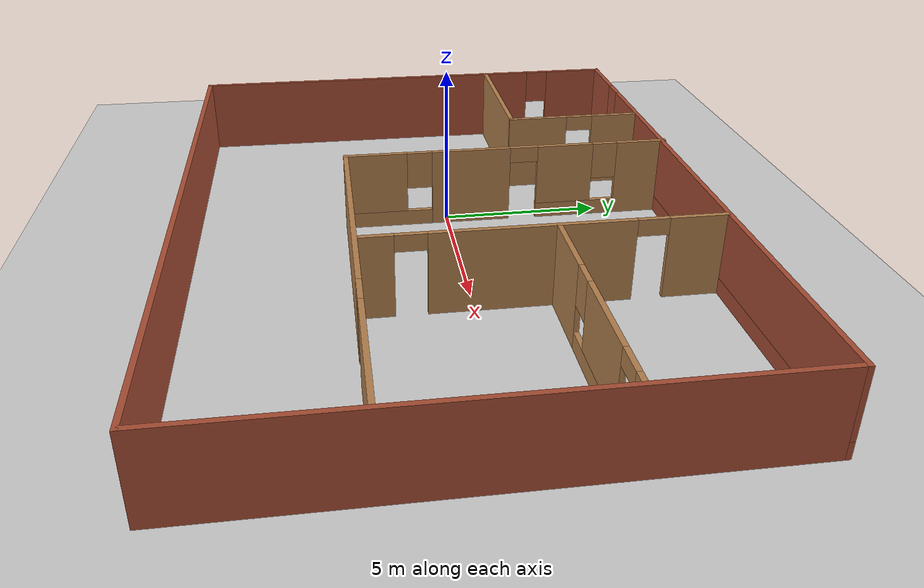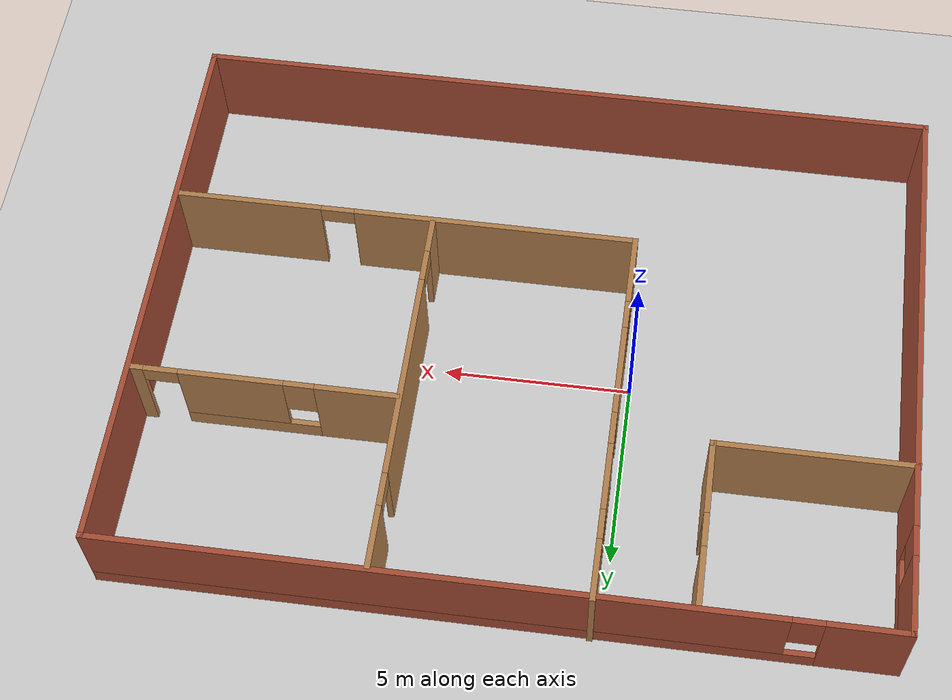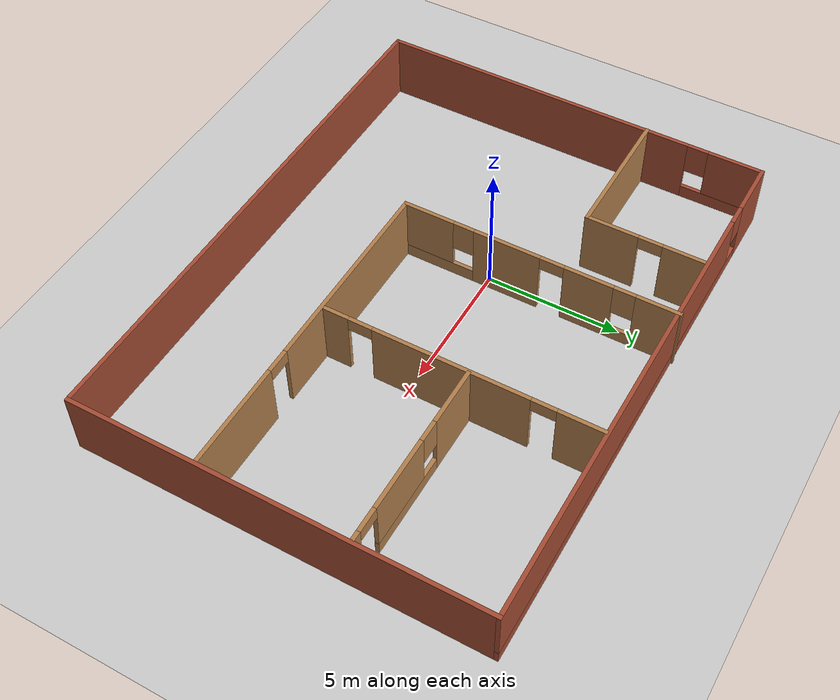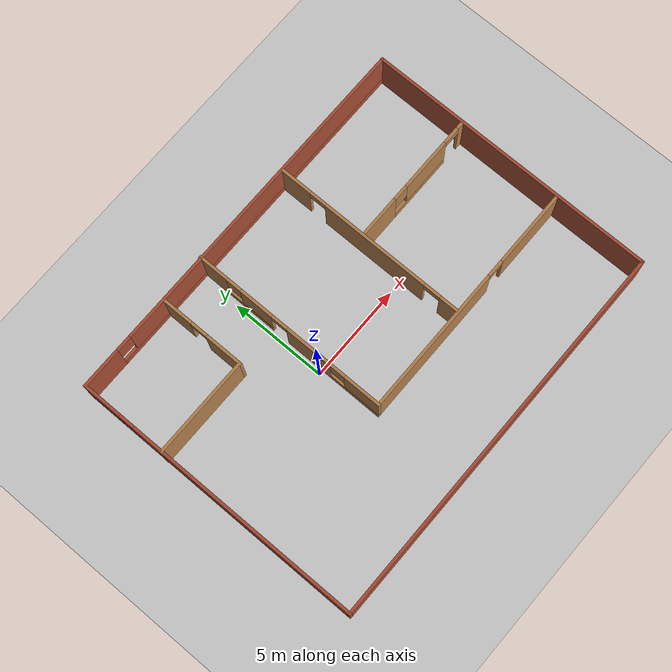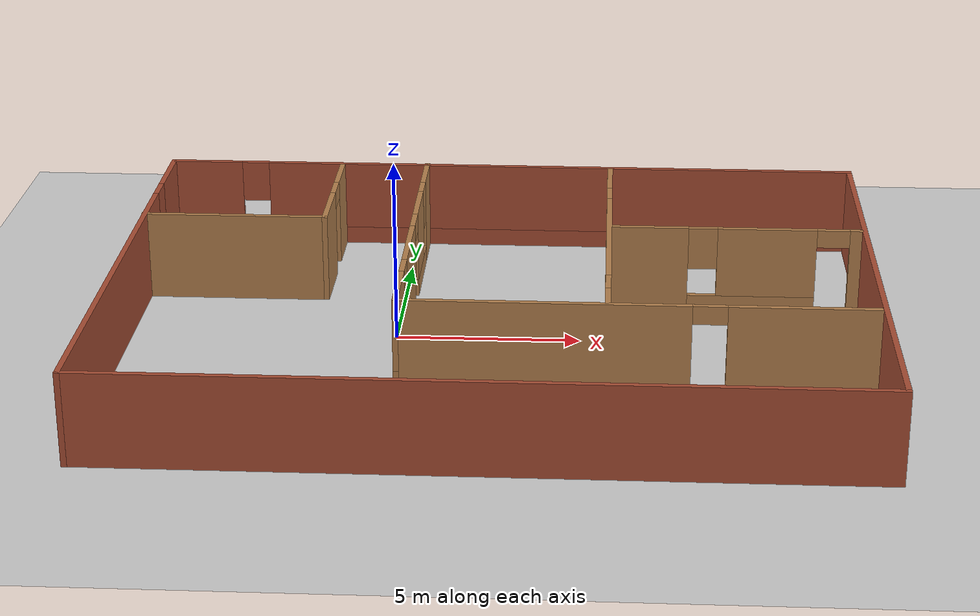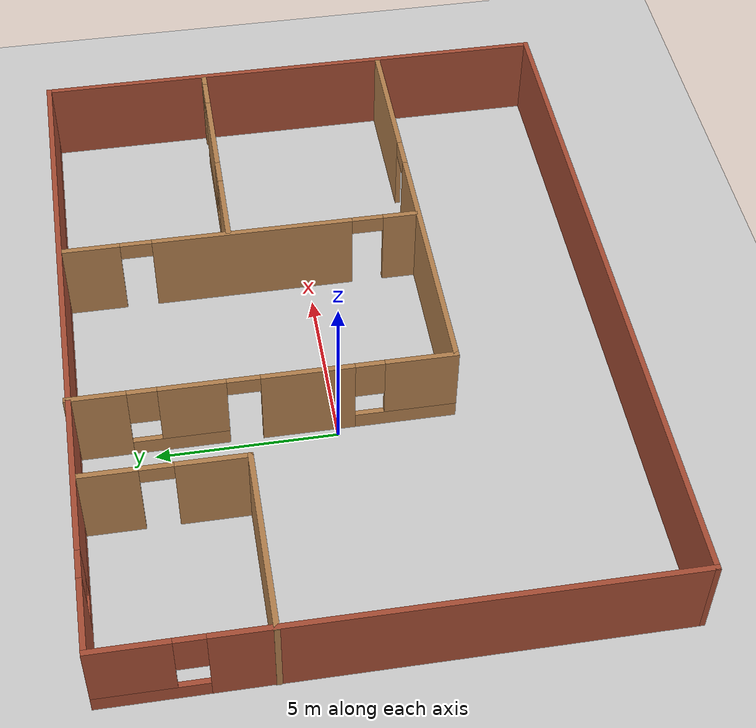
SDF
<sdf version="1.7">
 <world name="default">
  <model name="ground_plane">
   <static>1</static>
   <link name="link">
    <collision name="collision">
     <geometry><plane><normal>0 0 1</normal><size>100 100</size></plane></geometry>
     <surface>
      <contact><collide_bitmask>65535</collide_bitmask></contact>
      <friction><ode><mu>100</mu><mu2>50</mu2></ode></friction>
     </surface>
    </collision>
    <visual name="visual">
     <cast_shadows>0</cast_shadows>
     <geometry><plane><normal>0 0 1</normal><size>100 100</size></plane></geometry>
     <material>
      <script><uri>file://media/materials/scripts/gazebo.material</uri><name>Gazebo/Grey</name></script>
     </material>
    </visual>
   </link>
  </model>
  <model name="office">
   <pose>2.72547 -0.46039 0 0 -0 0</pose>
   <link name="Wall_11">
    <collision name="Wall_11_Collision">
     <geometry><box><size>5.25 0.15 2.5</size></box></geometry>
     <pose>0 0 1.25 0 -0 0</pose>
    </collision>
    <visual name="Wall_11_Visual">
     <pose>0 0 1.25 0 -0 0</pose>
     <geometry><box><size>5.25 0.15 2.5</size></box></geometry>
     <material>
      <script><uri>file://media/materials/scripts/gazebo.material</uri><name>Gazebo/Wood</name></script>
      <ambient>1 1 1 1</ambient>
     </material>
     <meta><layer>0</layer></meta>
    </visual>
    <pose>-7.50892 3.04379 0 0 -0 0</pose>
   </link>
   <link name="Wall_12">
    <pose>-4.95892 5.21879 0 0 -0 1.5708</pose>
    <visual name="Wall_12_Visual_0">
     <pose>-1.2428 0 1.25 0 -0 0</pose>
     <geometry><box><size>2.01441 0.15 2.5</size></box></geometry>
     <material>
      <script><uri>file://media/materials/scripts/gazebo.material</uri><name>Gazebo/Wood</name></script>
      <ambient>1 1 1 1</ambient>
     </material>
     <meta><layer>0</layer></meta>
    </visual>
    <collision name="Wall_12_Collision_0">
     <geometry><box><size>2.01441 0.15 2.5</size></box></geometry>
     <pose>-1.2428 0 1.25 0 -0 0</pose>
    </collision>
    <visual name="Wall_12_Visual_1">
     <pose>1.45721 0 1.25 0 -0 0</pose>
     <geometry><box><size>1.58559 0.15 2.5</size></box></geometry>
     <material>
      <script><uri>file://media/materials/scripts/gazebo.material</uri><name>Gazebo/Wood</name></script>
      <ambient>1 1 1 1</ambient>
     </material>
     <meta><layer>0</layer></meta>
    </visual>
    <collision name="Wall_12_Collision_1">
     <geometry><box><size>1.58559 0.15 2.5</size></box></geometry>
     <pose>1.45721 0 1.25 0 -0 0</pose>
    </collision>
    <visual name="Wall_12_Visual_2">
     <pose>0.214409 0 2.25 0 -0 0</pose>
     <geometry><box><size>0.9 0.15 0.5</size></box></geometry>
     <material>
      <script><uri>file://media/materials/scripts/gazebo.material</uri><name>Gazebo/Wood</name></script>
      <ambient>1 1 1 1</ambient>
     </material>
     <meta><layer>0</layer></meta>
    </visual>
    <collision name="Wall_12_Collision_2">
     <geometry><box><size>0.9 0.15 0.5</size></box></geometry>
     <pose>0.214409 0 2.25 0 -0 0</pose>
    </collision>
   </link>
   <link name="Wall_14">
    <pose>-2.44057 2.4041 0 0 -0 -1.5708</pose>
    <visual name="Wall_14_Visual_0">
     <pose>-4.4275 0 1.25 0 -0 0</pose>
     <geometry><box><size>1.64501 0.15 2.5</size></box></geometry>
     <material>
      <script><uri>file://media/materials/scripts/gazebo.material</uri><name>Gazebo/Wood</name></script>
      <ambient>1 1 1 1</ambient>
     </material>
     <meta><layer>0</layer></meta>
    </visual>
    <collision name="Wall_14_Collision_0">
     <geometry><box><size>1.64501 0.15 2.5</size></box></geometry>
     <pose>-4.4275 0 1.25 0 -0 0</pose>
    </collision>
    <visual name="Wall_14_Visual_1">
     <pose>1.18218 0 1.25 0 -0 0</pose>
     <geometry><box><size>2.52716 0.15 2.5</size></box></geometry>
     <material>
      <script><uri>file://media/materials/scripts/gazebo.material</uri><name>Gazebo/Wood</name></script>
      <ambient>1 1 1 1</ambient>
     </material>
     <meta><layer>0</layer></meta>
    </visual>
    <collision name="Wall_14_Collision_1">
     <geometry><box><size>2.52716 0.15 2.5</size></box></geometry>
     <pose>1.18218 0 1.25 0 -0 0</pose>
    </collision>
    <visual name="Wall_14_Visual_2">
     <pose>-2.2932 0 0.25 0 -0 0</pose>
     <geometry><box><size>2.62359 0.15 0.5</size></box></geometry>
     <material>
      <script><uri>file://media/materials/scripts/gazebo.material</uri><name>Gazebo/Wood</name></script>
      <ambient>1 1 1 1</ambient>
     </material>
     <meta><layer>0</layer></meta>
    </visual>
    <collision name="Wall_14_Collision_2">
     <geometry><box><size>2.62359 0.15 0.5</size></box></geometry>
     <pose>-2.2932 0 0.25 0 -0 0</pose>
    </collision>
    <visual name="Wall_14_Visual_3">
     <pose>3.84788 0 0.25 0 -0 0</pose>
     <geometry><box><size>2.80424 0.15 0.5</size></box></geometry>
     <material>
      <script><uri>file://media/materials/scripts/gazebo.material</uri><name>Gazebo/Wood</name></script>
      <ambient>1 1 1 1</ambient>
     </material>
     <meta><layer>0</layer></meta>
    </visual>
    <collision name="Wall_14_Collision_3">
     <geometry><box><size>2.80424 0.15 0.5</size></box></geometry>
     <pose>3.84788 0 0.25 0 -0 0</pose>
    </collision>
    <visual name="Wall_14_Visual_4">
     <pose>-1.8932 0 1.5 0 -0 0</pose>
     <geometry><box><size>1.82359 0.15 2</size></box></geometry>
     <material>
      <script><uri>file://media/materials/scripts/gazebo.material</uri><name>Gazebo/Wood</name></script>
      <ambient>1 1 1 1</ambient>
     </material>
     <meta><layer>0</layer></meta>
    </visual>
    <collision name="Wall_14_Collision_4">
     <geometry><box><size>1.82359 0.15 2</size></box></geometry>
     <pose>-1.8932 0 1.5 0 -0 0</pose>
    </collision>
    <visual name="Wall_14_Visual_5">
     <pose>-1.8932 0 1.5 0 -0 0</pose>
     <geometry><box><size>1.82359 0.15 2</size></box></geometry>
     <material>
      <script><uri>file://media/materials/scripts/gazebo.material</uri><name>Gazebo/Wood</name></script>
      <ambient>1 1 1 1</ambient>
     </material>
     <meta><layer>0</layer></meta>
    </visual>
    <collision name="Wall_14_Collision_5">
     <geometry><box><size>1.82359 0.15 2</size></box></geometry>
     <pose>-1.8932 0 1.5 0 -0 0</pose>
    </collision>
    <visual name="Wall_14_Visual_6">
     <pose>4.24788 0 1.5 0 -0 0</pose>
     <geometry><box><size>2.00424 0.15 2</size></box></geometry>
     <material>
      <script><uri>file://media/materials/scripts/gazebo.material</uri><name>Gazebo/Wood</name></script>
      <ambient>1 1 1 1</ambient>
     </material>
     <meta><layer>0</layer></meta>
    </visual>
    <collision name="Wall_14_Collision_6">
     <geometry><box><size>2.00424 0.15 2</size></box></geometry>
     <pose>4.24788 0 1.5 0 -0 0</pose>
    </collision>
    <visual name="Wall_14_Visual_7">
     <pose>-3.20499 0 1.9 0 -0 0</pose>
     <geometry><box><size>0.8 0.15 1.2</size></box></geometry>
     <material>
      <script><uri>file://media/materials/scripts/gazebo.material</uri><name>Gazebo/Wood</name></script>
      <ambient>1 1 1 1</ambient>
     </material>
     <meta><layer>0</layer></meta>
    </visual>
    <collision name="Wall_14_Collision_7">
     <geometry><box><size>0.8 0.15 1.2</size></box></geometry>
     <pose>-3.20499 0 1.9 0 -0 0</pose>
    </collision>
    <visual name="Wall_14_Visual_8">
     <pose>2.84576 0 1.9 0 -0 0</pose>
     <geometry><box><size>0.8 0.15 1.2</size></box></geometry>
     <material>
      <script><uri>file://media/materials/scripts/gazebo.material</uri><name>Gazebo/Wood</name></script>
      <ambient>1 1 1 1</ambient>
     </material>
     <meta><layer>0</layer></meta>
    </visual>
    <collision name="Wall_14_Collision_8">
     <geometry><box><size>0.8 0.15 1.2</size></box></geometry>
     <pose>2.84576 0 1.9 0 -0 0</pose>
    </collision>
    <visual name="Wall_14_Visual_9">
     <pose>-0.531403 0 2.25 0 -0 0</pose>
     <geometry><box><size>0.9 0.15 0.5</size></box></geometry>
     <material>
      <script><uri>file://media/materials/scripts/gazebo.material</uri><name>Gazebo/Wood</name></script>
      <ambient>1 1 1 1</ambient>
     </material>
     <meta><layer>0</layer></meta>
    </visual>
    <collision name="Wall_14_Collision_9">
     <geometry><box><size>0.9 0.15 0.5</size></box></geometry>
     <pose>-0.531403 0 2.25 0 -0 0</pose>
    </collision>
    <visual name="Wall_14_Visual_10">
     <pose>-0.531403 0 2.25 0 -0 0</pose>
     <geometry><box><size>0.9 0.15 0.5</size></box></geometry>
     <material>
      <script><uri>file://media/materials/scripts/gazebo.material</uri><name>Gazebo/Wood</name></script>
      <ambient>1 1 1 1</ambient>
     </material>
     <meta><layer>0</layer></meta>
    </visual>
    <collision name="Wall_14_Collision_10">
     <geometry><box><size>0.9 0.15 0.5</size></box></geometry>
     <pose>-0.531403 0 2.25 0 -0 0</pose>
    </collision>
   </link>
   <link name="Wall_15">
    <pose>3.73443 -2.77089 0 0 -0 0</pose>
    <visual name="Wall_15_Visual_0">
     <pose>-2.40953 0 1.25 0 -0 0</pose>
     <geometry><box><size>7.68094 0.15 2.5</size></box></geometry>
     <material>
      <script><uri>file://media/materials/scripts/gazebo.material</uri><name>Gazebo/Wood</name></script>
      <ambient>1 1 1 1</ambient>
     </material>
     <meta><layer>0</layer></meta>
    </visual>
    <collision name="Wall_15_Collision_0">
     <geometry><box><size>7.68094 0.15 2.5</size></box></geometry>
     <pose>-2.40953 0 1.25 0 -0 0</pose>
    </collision>
    <visual name="Wall_15_Visual_1">
     <pose>4.29047 0 1.25 0 -0 0</pose>
     <geometry><box><size>3.91906 0.15 2.5</size></box></geometry>
     <material>
      <script><uri>file://media/materials/scripts/gazebo.material</uri><name>Gazebo/Wood</name></script>
      <ambient>1 1 1 1</ambient>
     </material>
     <meta><layer>0</layer></meta>
    </visual>
    <collision name="Wall_15_Collision_1">
     <geometry><box><size>3.91906 0.15 2.5</size></box></geometry>
     <pose>4.29047 0 1.25 0 -0 0</pose>
    </collision>
    <visual name="Wall_15_Visual_2">
     <pose>1.88094 0 2.25 0 -0 0</pose>
     <geometry><box><size>0.9 0.15 0.5</size></box></geometry>
     <material>
      <script><uri>file://media/materials/scripts/gazebo.material</uri><name>Gazebo/Wood</name></script>
      <ambient>1 1 1 1</ambient>
     </material>
     <meta><layer>0</layer></meta>
    </visual>
    <collision name="Wall_15_Collision_2">
     <geometry><box><size>0.9 0.15 0.5</size></box></geometry>
     <pose>1.88094 0 2.25 0 -0 0</pose>
    </collision>
   </link>
   <link name="Wall_17">
    <pose>3.01214 2.38839 0 0 -0 -1.5708</pose>
    <visual name="Wall_17_Visual_0">
     <pose>-4.27473 0 1.25 0 -0 0</pose>
     <geometry><box><size>1.70055 0.15 2.5</size></box></geometry>
     <material>
      <script><uri>file://media/materials/scripts/gazebo.material</uri><name>Gazebo/Wood</name></script>
      <ambient>1 1 1 1</ambient>
     </material>
     <meta><layer>0</layer></meta>
    </visual>
    <collision name="Wall_17_Collision_0">
     <geometry><box><size>1.70055 0.15 2.5</size></box></geometry>
     <pose>-4.27473 0 1.25 0 -0 0</pose>
    </collision>
    <visual name="Wall_17_Visual_1">
     <pose>0.34994 0 1.25 0 -0 0</pose>
     <geometry><box><size>5.74879 0.15 2.5</size></box></geometry>
     <material>
      <script><uri>file://media/materials/scripts/gazebo.material</uri><name>Gazebo/Wood</name></script>
      <ambient>1 1 1 1</ambient>
     </material>
     <meta><layer>0</layer></meta>
    </visual>
    <collision name="Wall_17_Collision_1">
     <geometry><box><size>5.74879 0.15 2.5</size></box></geometry>
     <pose>0.34994 0 1.25 0 -0 0</pose>
    </collision>
    <visual name="Wall_17_Visual_2">
     <pose>4.62467 0 1.25 0 -0 0</pose>
     <geometry><box><size>1.00067 0.15 2.5</size></box></geometry>
     <material>
      <script><uri>file://media/materials/scripts/gazebo.material</uri><name>Gazebo/Wood</name></script>
      <ambient>1 1 1 1</ambient>
     </material>
     <meta><layer>0</layer></meta>
    </visual>
    <collision name="Wall_17_Collision_2">
     <geometry><box><size>1.00067 0.15 2.5</size></box></geometry>
     <pose>4.62467 0 1.25 0 -0 0</pose>
    </collision>
    <visual name="Wall_17_Visual_3">
     <pose>-2.97445 0 2.25 0 -0 0</pose>
     <geometry><box><size>0.9 0.15 0.5</size></box></geometry>
     <material>
      <script><uri>file://media/materials/scripts/gazebo.material</uri><name>Gazebo/Wood</name></script>
      <ambient>1 1 1 1</ambient>
     </material>
     <meta><layer>0</layer></meta>
    </visual>
    <collision name="Wall_17_Collision_3">
     <geometry><box><size>0.9 0.15 0.5</size></box></geometry>
     <pose>-2.97445 0 2.25 0 -0 0</pose>
    </collision>
    <visual name="Wall_17_Visual_4">
     <pose>3.67433 0 2.25 0 -0 0</pose>
     <geometry><box><size>0.9 0.15 0.5</size></box></geometry>
     <material>
      <script><uri>file://media/materials/scripts/gazebo.material</uri><name>Gazebo/Wood</name></script>
      <ambient>1 1 1 1</ambient>
     </material>
     <meta><layer>0</layer></meta>
    </visual>
    <collision name="Wall_17_Collision_4">
     <geometry><box><size>0.9 0.15 0.5</size></box></geometry>
     <pose>3.67433 0 2.25 0 -0 0</pose>
    </collision>
   </link>
   <link name="Wall_19">
    <pose>6.5075 2.72444 0 0 -0 0</pose>
    <visual name="Wall_19_Visual_0">
     <pose>-2.39606 0 1.25 0 -0 0</pose>
     <geometry><box><size>2.20787 0.15 2.5</size></box></geometry>
     <material>
      <script><uri>file://media/materials/scripts/gazebo.material</uri><name>Gazebo/Wood</name></script>
      <ambient>1 1 1 1</ambient>
     </material>
     <meta><layer>0</layer></meta>
    </visual>
    <collision name="Wall_19_Collision_0">
     <geometry><box><size>2.20787 0.15 2.5</size></box></geometry>
     <pose>-2.39606 0 1.25 0 -0 0</pose>
    </collision>
    <visual name="Wall_19_Visual_1">
     <pose>3.32305 0 1.25 0 -0 0</pose>
     <geometry><box><size>0.353896 0.15 2.5</size></box></geometry>
     <material>
      <script><uri>file://media/materials/scripts/gazebo.material</uri><name>Gazebo/Wood</name></script>
      <ambient>1 1 1 1</ambient>
     </material>
     <meta><layer>0</layer></meta>
    </visual>
    <collision name="Wall_19_Collision_1">
     <geometry><box><size>0.353896 0.15 2.5</size></box></geometry>
     <pose>3.32305 0 1.25 0 -0 0</pose>
    </collision>
    <visual name="Wall_19_Visual_2">
     <pose>0.476988 0 0.25 0 -0 0</pose>
     <geometry><box><size>3.53823 0.15 0.5</size></box></geometry>
     <material>
      <script><uri>file://media/materials/scripts/gazebo.material</uri><name>Gazebo/Wood</name></script>
      <ambient>1 1 1 1</ambient>
     </material>
     <meta><layer>0</layer></meta>
    </visual>
    <collision name="Wall_19_Collision_2">
     <geometry><box><size>3.53823 0.15 0.5</size></box></geometry>
     <pose>0.476988 0 0.25 0 -0 0</pose>
    </collision>
    <visual name="Wall_19_Visual_3">
     <pose>0.876988 0 1.5 0 -0 0</pose>
     <geometry><box><size>2.73823 0.15 2</size></box></geometry>
     <material>
      <script><uri>file://media/materials/scripts/gazebo.material</uri><name>Gazebo/Wood</name></script>
      <ambient>1 1 1 1</ambient>
     </material>
     <meta><layer>0</layer></meta>
    </visual>
    <collision name="Wall_19_Collision_3">
     <geometry><box><size>2.73823 0.15 2</size></box></geometry>
     <pose>0.876988 0 1.5 0 -0 0</pose>
    </collision>
    <visual name="Wall_19_Visual_4">
     <pose>-0.892129 0 1.9 0 -0 0</pose>
     <geometry><box><size>0.8 0.15 1.2</size></box></geometry>
     <material>
      <script><uri>file://media/materials/scripts/gazebo.material</uri><name>Gazebo/Wood</name></script>
      <ambient>1 1 1 1</ambient>
     </material>
     <meta><layer>0</layer></meta>
    </visual>
    <collision name="Wall_19_Collision_4">
     <geometry><box><size>0.8 0.15 1.2</size></box></geometry>
     <pose>-0.892129 0 1.9 0 -0 0</pose>
    </collision>
    <visual name="Wall_19_Visual_5">
     <pose>2.6961 0 2.25 0 -0 0</pose>
     <geometry><box><size>0.9 0.15 0.5</size></box></geometry>
     <material>
      <script><uri>file://media/materials/scripts/gazebo.material</uri><name>Gazebo/Wood</name></script>
      <ambient>1 1 1 1</ambient>
     </material>
     <meta><layer>0</layer></meta>
    </visual>
    <collision name="Wall_19_Collision_5">
     <geometry><box><size>0.9 0.15 0.5</size></box></geometry>
     <pose>2.6961 0 2.25 0 -0 0</pose>
    </collision>
   </link>
   <link name="Wall_2">
    <collision name="Wall_2_Collision">
     <geometry><box><size>20.25 0.15 2.5</size></box></geometry>
     <pose>0 0 1.25 0 -0 0</pose>
    </collision>
    <visual name="Wall_2_Visual">
     <pose>0 0 1.25 0 -0 0</pose>
     <geometry><box><size>20.25 0.15 2.5</size></box></geometry>
     <material>
      <script><uri>file://media/materials/scripts/gazebo.material</uri><name>Gazebo/Bricks</name></script>
      <ambient>1 1 1 1</ambient>
     </material>
     <meta><layer>0</layer></meta>
    </visual>
    <pose>0.008918 -7.5791 0 0 -0 3.14159</pose>
   </link>
   <link name="Wall_6">
    <pose>-10.0411 -0.029104 0 0 -0 1.5708</pose>
    <visual name="Wall_6_Visual_0">
     <pose>-1.45724 0 1.25 0 -0 0</pose>
     <geometry><box><size>12.3355 0.15 2.5</size></box></geometry>
     <material>
      <script><uri>file://media/materials/scripts/gazebo.material</uri><name>Gazebo/Bricks</name></script>
      <ambient>0.760784 0.662745 0.627451 1</ambient>
     </material>
     <meta><layer>0</layer></meta>
    </visual>
    <collision name="Wall_6_Collision_0">
     <geometry><box><size>12.3355 0.15 2.5</size></box></geometry>
     <pose>-1.45724 0 1.25 0 -0 0</pose>
    </collision>
    <visual name="Wall_6_Visual_1">
     <pose>6.16776 0 0.25 0 -0 0</pose>
     <geometry><box><size>2.91448 0.15 0.5</size></box></geometry>
     <material>
      <script><uri>file://media/materials/scripts/gazebo.material</uri><name>Gazebo/Bricks</name></script>
      <ambient>0.760784 0.662745 0.627451 1</ambient>
     </material>
     <meta><layer>0</layer></meta>
    </visual>
    <collision name="Wall_6_Collision_1">
     <geometry><box><size>2.91448 0.15 0.5</size></box></geometry>
     <pose>6.16776 0 0.25 0 -0 0</pose>
    </collision>
    <visual name="Wall_6_Visual_2">
     <pose>6.56776 0 1.5 0 -0 0</pose>
     <geometry><box><size>2.11448 0.15 2</size></box></geometry>
     <material>
      <script><uri>file://media/materials/scripts/gazebo.material</uri><name>Gazebo/Bricks</name></script>
      <ambient>0.760784 0.662745 0.627451 1</ambient>
     </material>
     <meta><layer>0</layer></meta>
    </visual>
    <collision name="Wall_6_Collision_2">
     <geometry><box><size>2.11448 0.15 2</size></box></geometry>
     <pose>6.56776 0 1.5 0 -0 0</pose>
    </collision>
    <visual name="Wall_6_Visual_3">
     <pose>5.11052 0 1.9 0 -0 0</pose>
     <geometry><box><size>0.8 0.15 1.2</size></box></geometry>
     <material>
      <script><uri>file://media/materials/scripts/gazebo.material</uri><name>Gazebo/Bricks</name></script>
      <ambient>0.760784 0.662745 0.627451 1</ambient>
     </material>
     <meta><layer>0</layer></meta>
    </visual>
    <collision name="Wall_6_Collision_3">
     <geometry><box><size>0.8 0.15 1.2</size></box></geometry>
     <pose>5.11052 0 1.9 0 -0 0</pose>
    </collision>
   </link>
   <link name="Wall_7">
    <pose>0.008918 7.5209 0 0 -0 0</pose>
    <visual name="Wall_7_Visual_0">
     <pose>-9.05529 0 1.25 0 -0 0</pose>
     <geometry><box><size>2.13941 0.15 2.5</size></box></geometry>
     <material>
      <script><uri>file://media/materials/scripts/gazebo.material</uri><name>Gazebo/Bricks</name></script>
      <ambient>0.760784 0.662745 0.627451 1</ambient>
     </material>
     <meta><layer>0</layer></meta>
    </visual>
    <collision name="Wall_7_Collision_0">
     <geometry><box><size>2.13941 0.15 2.5</size></box></geometry>
     <pose>-9.05529 0 1.25 0 -0 0</pose>
    </collision>
    <visual name="Wall_7_Visual_1">
     <pose>1.06971 0 0.25 0 -0 0</pose>
     <geometry><box><size>18.1106 0.15 0.5</size></box></geometry>
     <material>
      <script><uri>file://media/materials/scripts/gazebo.material</uri><name>Gazebo/Bricks</name></script>
      <ambient>0.760784 0.662745 0.627451 1</ambient>
     </material>
     <meta><layer>0</layer></meta>
    </visual>
    <collision name="Wall_7_Collision_1">
     <geometry><box><size>18.1106 0.15 0.5</size></box></geometry>
     <pose>1.06971 0 0.25 0 -0 0</pose>
    </collision>
    <visual name="Wall_7_Visual_2">
     <pose>1.46971 0 1.5 0 -0 0</pose>
     <geometry><box><size>17.3106 0.15 2</size></box></geometry>
     <material>
      <script><uri>file://media/materials/scripts/gazebo.material</uri><name>Gazebo/Bricks</name></script>
      <ambient>0.760784 0.662745 0.627451 1</ambient>
     </material>
     <meta><layer>0</layer></meta>
    </visual>
    <collision name="Wall_7_Collision_2">
     <geometry><box><size>17.3106 0.15 2</size></box></geometry>
     <pose>1.46971 0 1.5 0 -0 0</pose>
    </collision>
    <visual name="Wall_7_Visual_3">
     <pose>-7.58559 0 1.9 0 -0 0</pose>
     <geometry><box><size>0.8 0.15 1.2</size></box></geometry>
     <material>
      <script><uri>file://media/materials/scripts/gazebo.material</uri><name>Gazebo/Bricks</name></script>
      <ambient>0.760784 0.662745 0.627451 1</ambient>
     </material>
     <meta><layer>0</layer></meta>
    </visual>
    <collision name="Wall_7_Collision_3">
     <geometry><box><size>0.8 0.15 1.2</size></box></geometry>
     <pose>-7.58559 0 1.9 0 -0 0</pose>
    </collision>
   </link>
   <link name="Wall_9">
    <collision name="Wall_9_Collision">
     <geometry><box><size>15.25 0.15 2.5</size></box></geometry>
     <pose>0 0 1.25 0 -0 0</pose>
    </collision>
    <visual name="Wall_9_Visual">
     <pose>0 0 1.25 0 -0 0</pose>
     <geometry><box><size>15.25 0.15 2.5</size></box></geometry>
     <material>
      <script><uri>file://media/materials/scripts/gazebo.material</uri><name>Gazebo/Bricks</name></script>
      <ambient>0.760784 0.662745 0.627451 1</ambient>
     </material>
     <meta><layer>0</layer></meta>
    </visual>
    <pose>10.0589 -0.029104 0 0 -0 1.5708</pose>
   </link>
   <static>1</static>
  </model>
 </world>
</sdf>
